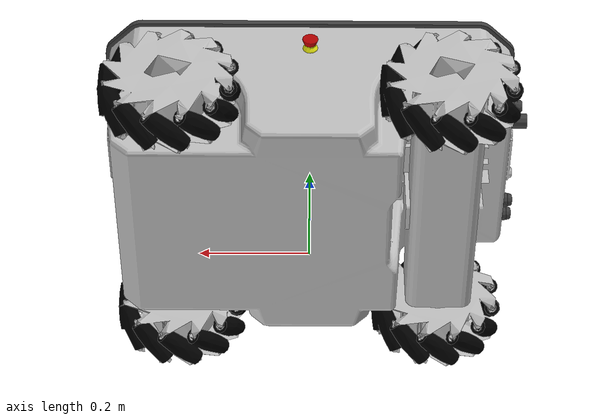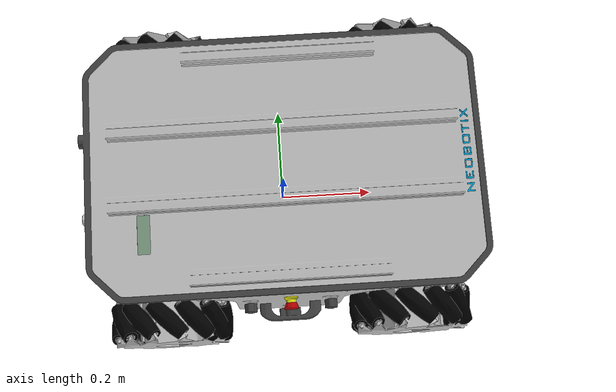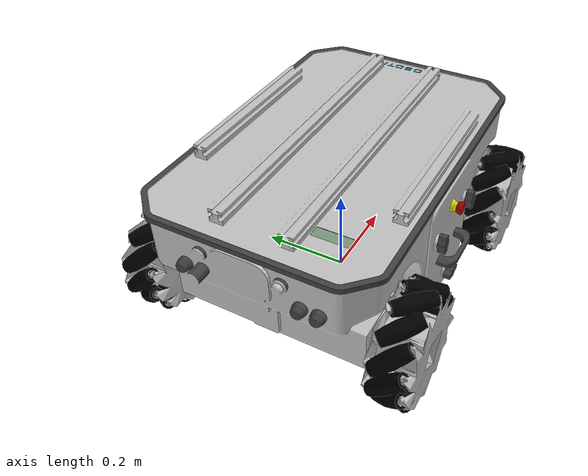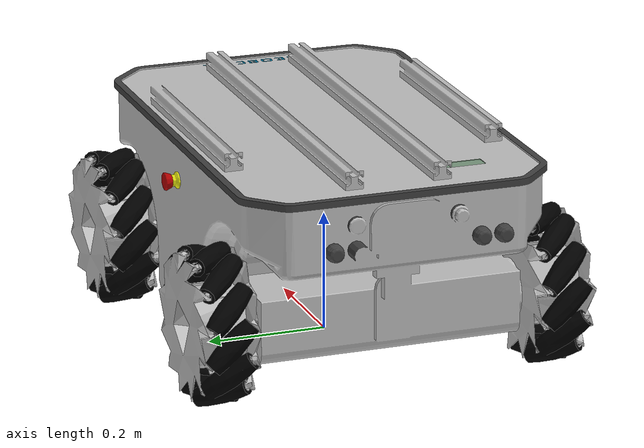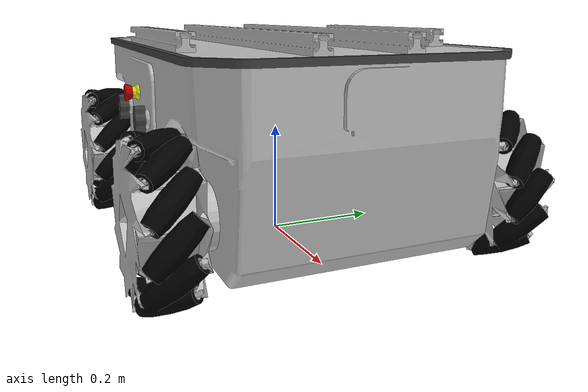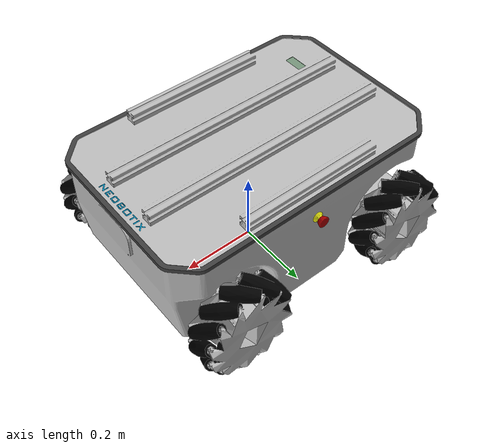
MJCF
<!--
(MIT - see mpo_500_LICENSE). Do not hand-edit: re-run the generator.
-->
<mujoco model="mpo_500">
  <compiler angle="radian" meshdir="meshes" autolimits="true"/>

  <default>
    <default class="mpo_500">
      <default class="visual">
        <geom type="mesh" contype="0" conaffinity="0" group="2"/>
      </default>
      <default class="collision">
        <geom type="mesh" group="3" rgba="0.6 0.1 0.1 0.35"/>
      </default>
      <default class="wheel_collision">
        <geom type="sphere" group="3" rgba="0.05 0.05 0.05 0.4"
              friction="0.02 0.005 0.0001" priority="2"/>
      </default>
      <default class="wheel">
        <joint axis="0 1 0" damping="1.0" armature="0.05" limited="false"/>
      </default>
    </default>
  </default>

  <asset>
    <material name="MPO-500-BODY__m0_mat" rgba="0.749 0.749 0.749 1"/>
    <material name="MPO-500-BODY__m1_mat" rgba="0.4706 0.5882 0.4902 1"/>
    <material name="MPO-500-BODY__m2_mat" rgba="0 0.6 0.8 1"/>
    <material name="MPO-500-BODY__m3_mat" rgba="0.251 0.251 0.251 1"/>
    <material name="MPO-500-BODY__m4_mat" rgba="0.698 0 0 1"/>
    <material name="MPO-500-BODY__m5_mat" rgba="0.8667 0.8667 0.051 1"/>
    <material name="MPO-500-WHEEL__m0_mat" rgba="0.749 0.749 0.749 1"/>
    <material name="MPO-500-WHEEL__m1_mat" rgba="0 0 0 1"/>
    <mesh file="MPO-500-BODY__m0.obj" scale="0.001 0.001 0.001" inertia="shell"/>
    <mesh file="MPO-500-BODY__m1.obj" scale="0.001 0.001 0.001" inertia="shell"/>
    <mesh file="MPO-500-BODY__m2.obj" scale="0.001 0.001 0.001" inertia="shell"/>
    <mesh file="MPO-500-BODY__m3.obj" scale="0.001 0.001 0.001" inertia="shell"/>
    <mesh file="MPO-500-BODY__m4.obj" scale="0.001 0.001 0.001" inertia="shell"/>
    <mesh file="MPO-500-BODY__m5.obj" scale="0.001 0.001 0.001" inertia="shell"/>
    <mesh file="MPO-500-WHEEL__m0.obj" scale="0.001 0.001 0.001" inertia="shell"/>
    <mesh file="MPO-500-WHEEL__m1.obj" scale="0.001 0.001 0.001" inertia="shell"/>
  </asset>

  <contact>
    <exclude body1="base_link" body2="mpo_500_omni_wheel_front_left_link"/>
    <exclude body1="base_link" body2="mpo_500_omni_wheel_front_right_link"/>
    <exclude body1="base_link" body2="mpo_500_omni_wheel_back_left_link"/>
    <exclude body1="base_link" body2="mpo_500_omni_wheel_back_right_link"/>
  </contact>

  <worldbody>
    <body name="base_link" childclass="mpo_500">
      <freejoint name="base_free"/>
      <inertial pos="0 0 0" mass="64" diaginertia="2.8 2.8 2.8"/>
      <site name="base_imu" pos="0 0 0" size="0.01" rgba="0 0 0 0"/>
        <geom class="visual" mesh="MPO-500-BODY__m0" material="MPO-500-BODY__m0_mat" pos="0. 0. 0" quat="0.4998982 -0.5 -0.5001018 0.5"/>
        <geom class="visual" mesh="MPO-500-BODY__m1" material="MPO-500-BODY__m1_mat" pos="0. 0. 0" quat="0.4998982 -0.5 -0.5001018 0.5"/>
        <geom class="visual" mesh="MPO-500-BODY__m2" material="MPO-500-BODY__m2_mat" pos="0. 0. 0" quat="0.4998982 -0.5 -0.5001018 0.5"/>
        <geom class="visual" mesh="MPO-500-BODY__m3" material="MPO-500-BODY__m3_mat" pos="0. 0. 0" quat="0.4998982 -0.5 -0.5001018 0.5"/>
        <geom class="visual" mesh="MPO-500-BODY__m4" material="MPO-500-BODY__m4_mat" pos="0. 0. 0" quat="0.4998982 -0.5 -0.5001018 0.5"/>
        <geom class="visual" mesh="MPO-500-BODY__m5" material="MPO-500-BODY__m5_mat" pos="0. 0. 0" quat="0.4998982 -0.5 -0.5001018 0.5"/>
        <geom class="collision" mesh="MPO-500-BODY__m0" name="base_link_collision" pos="0. 0. 0" quat="0.4998982 -0.5 -0.5001018 0.5"/>
        <body name="mpo_500_omni_wheel_front_left_link" pos="0.25 0.28 0.13">
          <inertial pos="0 0 0" mass="2.2" diaginertia="0.01 0.01 0.01"/>
          <joint name="mpo_500_omni_wheel_front_left_joint" class="wheel"/>
            <geom class="visual" mesh="MPO-500-WHEEL__m0" material="MPO-500-WHEEL__m0_mat" pos="0 0 0"/>
            <geom class="visual" mesh="MPO-500-WHEEL__m1" material="MPO-500-WHEEL__m1_mat" pos="0 0 0"/>
            <geom class="wheel_collision" name="mpo_500_omni_wheel_front_left_link_tyre" size="0.127" pos="0 0 0"/>
        </body>
        <body name="mpo_500_omni_wheel_front_right_link" pos="0.25 -0.28 0.13" quat="0.0007963267 0 0 0.9999997">
          <inertial pos="0 0 0" mass="2.2" diaginertia="0.01 0.01 0.01"/>
          <joint name="mpo_500_omni_wheel_front_right_joint" class="wheel"/>
            <geom class="visual" mesh="MPO-500-WHEEL__m0" material="MPO-500-WHEEL__m0_mat" pos="0 0 0"/>
            <geom class="visual" mesh="MPO-500-WHEEL__m1" material="MPO-500-WHEEL__m1_mat" pos="0 0 0"/>
            <geom class="wheel_collision" name="mpo_500_omni_wheel_front_right_link_tyre" size="0.127" pos="0 0 0"/>
        </body>
        <body name="mpo_500_omni_wheel_back_left_link" pos="-0.25 0.28 0.13">
          <inertial pos="0 0 0" mass="2.2" diaginertia="0.01 0.01 0.01"/>
          <joint name="mpo_500_omni_wheel_back_left_joint" class="wheel"/>
            <geom class="visual" mesh="MPO-500-WHEEL__m0" material="MPO-500-WHEEL__m0_mat" pos="0 0 0"/>
            <geom class="visual" mesh="MPO-500-WHEEL__m1" material="MPO-500-WHEEL__m1_mat" pos="0 0 0"/>
            <geom class="wheel_collision" name="mpo_500_omni_wheel_back_left_link_tyre" size="0.127" pos="0 0 0"/>
        </body>
        <body name="mpo_500_omni_wheel_back_right_link" pos="-0.25 -0.28 0.13" quat="0.0007963267 0 0 0.9999997">
          <inertial pos="0 0 0" mass="2.2" diaginertia="0.01 0.01 0.01"/>
          <joint name="mpo_500_omni_wheel_back_right_joint" class="wheel"/>
            <geom class="visual" mesh="MPO-500-WHEEL__m0" material="MPO-500-WHEEL__m0_mat" pos="0 0 0"/>
            <geom class="visual" mesh="MPO-500-WHEEL__m1" material="MPO-500-WHEEL__m1_mat" pos="0 0 0"/>
            <geom class="wheel_collision" name="mpo_500_omni_wheel_back_right_link_tyre" size="0.127" pos="0 0 0"/>
        </body>
    </body>
  </worldbody>

  <actuator>
    <!-- The planar drive. Neobotix publishes 1.5 m/s for the MPO-500; forcerange is sized to move
         72.8 kg. -->
    <velocity name="base_vx" joint="base_free" gear="1 0 0 0 0 0" kv="9000" ctrlrange="-1.5 1.5" forcerange="-900 900"/>
    <velocity name="base_vy" joint="base_free" gear="0 1 0 0 0 0" kv="9000" ctrlrange="-1.5 1.5" forcerange="-900 900"/>
    <velocity name="base_wz" joint="base_free" gear="0 0 0 0 0 1" kv="4500" ctrlrange="-1.5 1.5" forcerange="-500 500"/>
    <!-- Observational wheel servos, driven from the mecanum inverse kinematics so the wheels turn,
         and turn differently when strafing. They are not the motive force. -->
    <velocity name="wheel_front_left_motor" joint="mpo_500_omni_wheel_front_left_joint" kv="5" ctrlrange="-30 30" forcerange="-10 10"/>
    <velocity name="wheel_front_right_motor" joint="mpo_500_omni_wheel_front_right_joint" kv="5" ctrlrange="-30 30" forcerange="-10 10"/>
    <velocity name="wheel_back_left_motor" joint="mpo_500_omni_wheel_back_left_joint" kv="5" ctrlrange="-30 30" forcerange="-10 10"/>
    <velocity name="wheel_back_right_motor" joint="mpo_500_omni_wheel_back_right_joint" kv="5" ctrlrange="-30 30" forcerange="-10 10"/>
  </actuator>

  <keyframe>
    <!-- base_link rides at wheel radius minus the wheel-centre height, which is NEGATIVE here as on
         the mpo_700: the vendor's base_link frame sits below the tyre contact. -->
    <key name="home" qpos="0 0 -0.003 1 0 0 0  0 0 0 0"/>
  </keyframe>
</mujoco>
